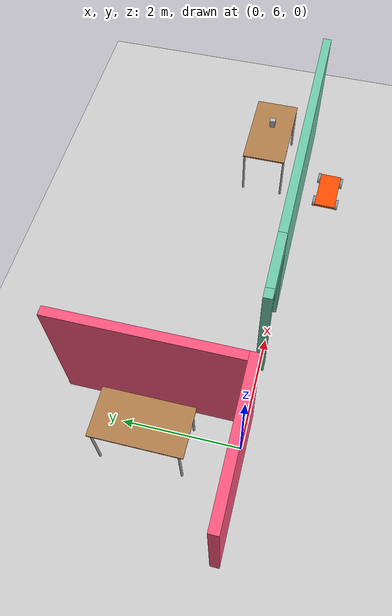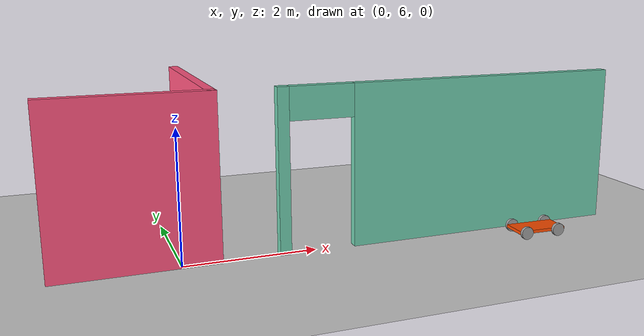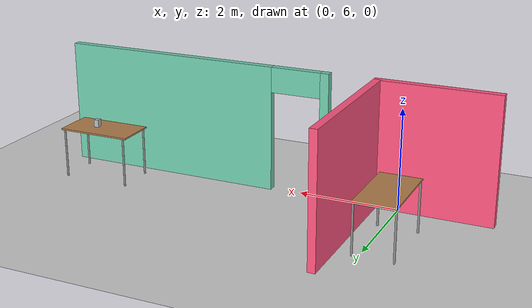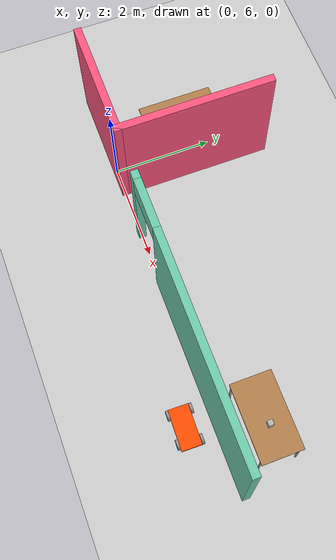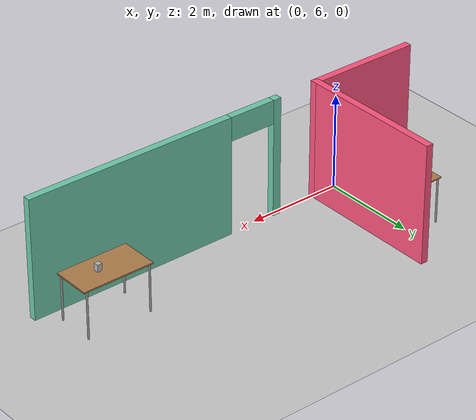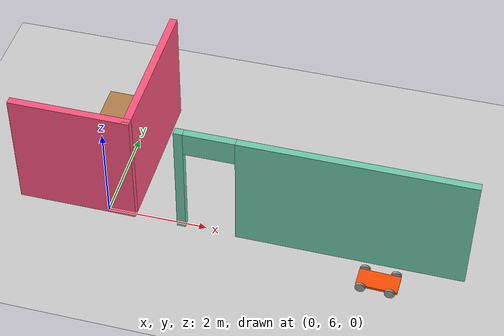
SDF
<sdf version="1.6">
 <world name="default">
  <model name="ground_plane">
   <static>1</static>
   <link name="link">
    <collision name="collision">
     <geometry><plane><normal>0 0 1</normal><size>100 100</size></plane></geometry>
     <surface><friction><ode><mu>100</mu><mu2>50</mu2></ode></friction></surface>
    </collision>
    <visual name="visual">
     <cast_shadows>0</cast_shadows>
     <geometry><plane><normal>0 0 1</normal><size>100 100</size></plane></geometry>
     <material>
      <script><uri>file://media/materials/scripts/gazebo.material</uri><name>Gazebo/Grey</name></script>
     </material>
    </visual>
   </link>
  </model>
  <model name="myWorld">
   <pose>-1.5 0 0 0 -0 0</pose>
   <link name="Wall_144">
    <collision name="Wall_144_Collision">
     <geometry><box><size>3.15 0.15 2.5</size></box></geometry>
     <pose>0 0 1.25 0 -0 0</pose>
    </collision>
    <visual name="Wall_144_Visual">
     <pose>0 0 1.25 0 -0 0</pose>
     <geometry><box><size>3.15 0.15 2.5</size></box></geometry>
     <material>
      <script><uri>file://media/materials/scripts/gazebo.material</uri><name>Gazebo/Grey</name></script>
      <ambient>1 0.333333 0.498039 1</ambient>
     </material>
     <meta><layer>0</layer></meta>
    </visual>
    <pose>2 7.5 0 0 0 -1.5708</pose>
   </link>
   <link name="Wall_145">
    <collision name="Wall_145_Collision">
     <geometry><box><size>2.4 0.15 2.5</size></box></geometry>
     <pose>0 0 1.25 0 -0 0</pose>
    </collision>
    <visual name="Wall_145_Visual">
     <pose>0 0 1.25 0 -0 0</pose>
     <geometry><box><size>2.4 0.15 2.5</size></box></geometry>
     <material>
      <script><uri>file://media/materials/scripts/gazebo.material</uri><name>Gazebo/Grey</name></script>
      <ambient>1 0.333333 0.498039 1</ambient>
     </material>
     <meta><layer>0</layer></meta>
    </visual>
    <pose>0.875 6 0 0 -0 3.14159</pose>
   </link>
   <link name="Wall_184">
    <pose>5.75 6 0 0 -0 3.14159</pose>
    <visual name="Wall_184_Visual_0">
     <pose>-0.5875 0 1.25 0 -0 0</pose>
     <geometry><box><size>4.475 0.15 2.5</size></box></geometry>
     <material>
      <script><uri>file://media/materials/scripts/gazebo.material</uri><name>Gazebo/Grey</name></script>
      <ambient>0.435294 0.796078 0.67451 1</ambient>
     </material>
     <meta><layer>0</layer></meta>
    </visual>
    <collision name="Wall_184_Collision_0">
     <geometry><box><size>4.475 0.15 2.5</size></box></geometry>
     <pose>-0.5875 0 1.25 0 -0 0</pose>
    </collision>
    <visual name="Wall_184_Visual_1">
     <pose>2.7375 0 1.25 0 -0 0</pose>
     <geometry><box><size>0.175 0.15 2.5</size></box></geometry>
     <material>
      <script><uri>file://media/materials/scripts/gazebo.material</uri><name>Gazebo/Grey</name></script>
      <ambient>0.435294 0.796078 0.67451 1</ambient>
     </material>
     <meta><layer>0</layer></meta>
    </visual>
    <collision name="Wall_184_Collision_1">
     <geometry><box><size>0.175 0.15 2.5</size></box></geometry>
     <pose>2.7375 0 1.25 0 -0 0</pose>
    </collision>
    <visual name="Wall_184_Visual_2">
     <pose>2.15 0 2.25 0 -0 0</pose>
     <geometry><box><size>1 0.15 0.5</size></box></geometry>
     <material>
      <script><uri>file://media/materials/scripts/gazebo.material</uri><name>Gazebo/Grey</name></script>
      <ambient>0.435294 0.796078 0.67451 1</ambient>
     </material>
     <meta><layer>0</layer></meta>
    </visual>
    <collision name="Wall_184_Collision_2">
     <geometry><box><size>1 0.15 0.5</size></box></geometry>
     <pose>2.15 0 2.25 0 -0 0</pose>
    </collision>
   </link>
   <static>1</static>
  </model>
  <model name="table">
   <static>1</static>
   <link name="link">
    <collision name="surface">
     <pose>0 0 1 0 -0 0</pose>
     <geometry><box><size>1.5 0.8 0.03</size></box></geometry>
     <surface><friction><ode><mu>0.6</mu><mu2>0.6</mu2></ode></friction></surface>
    </collision>
    <visual name="visual1">
     <pose>0 0 1 0 -0 0</pose>
     <geometry><box><size>1.5 0.8 0.03</size></box></geometry>
     <material>
      <script><uri>file://media/materials/scripts/gazebo.material</uri><name>Gazebo/Wood</name></script>
     </material>
    </visual>
    <collision name="front_left_leg">
     <pose>0.68 0.38 0.5 0 -0 0</pose>
     <geometry><cylinder><radius>0.02</radius><length>1</length></cylinder></geometry>
    </collision>
    <visual name="front_left_leg">
     <pose>0.68 0.38 0.5 0 -0 0</pose>
     <geometry><cylinder><radius>0.02</radius><length>1</length></cylinder></geometry>
     <material>
      <script><uri>file://media/materials/scripts/gazebo.material</uri><name>Gazebo/Grey</name></script>
     </material>
    </visual>
    <collision name="front_right_leg">
     <pose>0.68 -0.38 0.5 0 -0 0</pose>
     <geometry><cylinder><radius>0.02</radius><length>1</length></cylinder></geometry>
    </collision>
    <visual name="front_right_leg">
     <pose>0.68 -0.38 0.5 0 -0 0</pose>
     <geometry><cylinder><radius>0.02</radius><length>1</length></cylinder></geometry>
     <material>
      <script><uri>file://media/materials/scripts/gazebo.material</uri><name>Gazebo/Grey</name></script>
     </material>
    </visual>
    <collision name="back_right_leg">
     <pose>-0.68 -0.38 0.5 0 -0 0</pose>
     <geometry><cylinder><radius>0.02</radius><length>1</length></cylinder></geometry>
    </collision>
    <visual name="back_right_leg">
     <pose>-0.68 -0.38 0.5 0 -0 0</pose>
     <geometry><cylinder><radius>0.02</radius><length>1</length></cylinder></geometry>
     <material>
      <script><uri>file://media/materials/scripts/gazebo.material</uri><name>Gazebo/Grey</name></script>
     </material>
    </visual>
    <collision name="back_left_leg">
     <pose>-0.68 0.38 0.5 0 -0 0</pose>
     <geometry><cylinder><radius>0.02</radius><length>1</length></cylinder></geometry>
    </collision>
    <visual name="back_left_leg">
     <pose>-0.68 0.38 0.5 0 -0 0</pose>
     <geometry><cylinder><radius>0.02</radius><length>1</length></cylinder></geometry>
     <material>
      <script><uri>file://media/materials/scripts/gazebo.material</uri><name>Gazebo/Grey</name></script>
     </material>
    </visual>
   </link>
   <pose>6 6.75 0 0 -0 0</pose>
  </model>
  <model name="tea_box">
   <link name="link">
    <pose>0 0 0.075 0 -0 0</pose>
    <visual name="visual">
     <geometry><box><size>0.1 0.1 0.15</size></box></geometry>
     <material>
      <script>
       <uri>file://model/3DGEMS/food/tea_box/materials/scripts</uri>
       <uri>file://model/3DGEMS/food/tea_box/materials/textures</uri>
       <name>tea_pat</name>
      </script>
     </material>
    </visual>
    <collision name="collision"><geometry><box><size>0.1 0.1 0.15</size></box></geometry></collision>
   </link>
   <static>1</static>
   <pose>6.15 6.75 1.02 0 -0 0</pose>
  </model>
  <model name="table_0_clone_1">
   <static>1</static>
   <link name="link">
    <collision name="surface">
     <pose>0 0 1 0 -0 0</pose>
     <geometry><box><size>1.5 0.8 0.03</size></box></geometry>
     <surface><friction><ode><mu>0.6</mu><mu2>0.6</mu2></ode></friction></surface>
    </collision>
    <visual name="visual1">
     <pose>0 0 1 0 -0 0</pose>
     <geometry><box><size>1.5 0.8 0.03</size></box></geometry>
     <material>
      <script><uri>file://media/materials/scripts/gazebo.material</uri><name>Gazebo/Wood</name></script>
     </material>
    </visual>
    <collision name="front_left_leg">
     <pose>0.68 0.38 0.5 0 -0 0</pose>
     <geometry><cylinder><radius>0.02</radius><length>1</length></cylinder></geometry>
    </collision>
    <visual name="front_left_leg">
     <pose>0.68 0.38 0.5 0 -0 0</pose>
     <geometry><cylinder><radius>0.02</radius><length>1</length></cylinder></geometry>
     <material>
      <script><uri>file://media/materials/scripts/gazebo.material</uri><name>Gazebo/Grey</name></script>
     </material>
    </visual>
    <collision name="front_right_leg">
     <pose>0.68 -0.38 0.5 0 -0 0</pose>
     <geometry><cylinder><radius>0.02</radius><length>1</length></cylinder></geometry>
    </collision>
    <visual name="front_right_leg">
     <pose>0.68 -0.38 0.5 0 -0 0</pose>
     <geometry><cylinder><radius>0.02</radius><length>1</length></cylinder></geometry>
     <material>
      <script><uri>file://media/materials/scripts/gazebo.material</uri><name>Gazebo/Grey</name></script>
     </material>
    </visual>
    <collision name="back_right_leg">
     <pose>-0.68 -0.38 0.5 0 -0 0</pose>
     <geometry><cylinder><radius>0.02</radius><length>1</length></cylinder></geometry>
    </collision>
    <visual name="back_right_leg">
     <pose>-0.68 -0.38 0.5 0 -0 0</pose>
     <geometry><cylinder><radius>0.02</radius><length>1</length></cylinder></geometry>
     <material>
      <script><uri>file://media/materials/scripts/gazebo.material</uri><name>Gazebo/Grey</name></script>
     </material>
    </visual>
    <collision name="back_left_leg">
     <pose>-0.68 0.38 0.5 0 -0 0</pose>
     <geometry><cylinder><radius>0.02</radius><length>1</length></cylinder></geometry>
    </collision>
    <visual name="back_left_leg">
     <pose>-0.68 0.38 0.5 0 -0 0</pose>
     <geometry><cylinder><radius>0.02</radius><length>1</length></cylinder></geometry>
     <material>
      <script><uri>file://media/materials/scripts/gazebo.material</uri><name>Gazebo/Grey</name></script>
     </material>
    </visual>
   </link>
   <pose>-0.25 7.5 0 0 -0 1.5708</pose>
  </model>
  <model name="myRobot_3">
   <link name="link_0">
    <pose>0.008 1e-06 0 0 -0 0</pose>
    <inertial>
     <mass>1</mass>
     <inertia>
      <ixx>0.166667</ixx>
      <ixy>0</ixy>
      <ixz>0</ixz>
      <iyy>0.166667</iyy>
      <iyz>0</iyz>
      <izz>0.166667</izz>
     </inertia>
    </inertial>
    <visual name="visual">
     <geometry><box><size>0.8 0.4 0.05</size></box></geometry>
     <material>
      <lighting>1</lighting>
      <script><uri>file://media/materials/scripts/gazebo.material</uri><name>Gazebo/Grey</name></script>
      <shader type="pixel"><normal_map>__default__</normal_map></shader>
      <ambient>1 0.3 0 1</ambient>
      <diffuse>0.7 0.7 0.7 1</diffuse>
      <specular>0.01 0.01 0.01 1</specular>
      <emissive>0 0 0 1</emissive>
     </material>
    </visual>
    <collision name="collision">
     <geometry><box><size>0.8 0.4 0.05</size></box></geometry>
     <surface>
      <friction>
       <ode><mu>1</mu><mu2>1</mu2><fdir1>0 0 0</fdir1><slip1>0</slip1><slip2>0</slip2></ode>
       <torsional>
        <coefficient>1</coefficient>
        <patch_radius>0</patch_radius>
        <surface_radius>0</surface_radius>
        <use_patch_radius>1</use_patch_radius>
        <ode><slip>0</slip></ode>
       </torsional>
      </friction>
      <bounce><restitution_coefficient>0</restitution_coefficient><threshold>1e+06</threshold></bounce>
      <contact>
       <collide_without_contact>0</collide_without_contact>
       <collide_without_contact_bitmask>1</collide_without_contact_bitmask>
       <collide_bitmask>1</collide_bitmask>
       <ode>
        <soft_cfm>0</soft_cfm>
        <soft_erp>0.2</soft_erp>
        <kp>1e+13</kp>
        <kd>1</kd>
        <max_vel>0.01</max_vel>
        <min_depth>0</min_depth>
       </ode>
       <bullet>
        <split_impulse>1</split_impulse>
        <split_impulse_penetration_threshold>-0.01</split_impulse_penetration_threshold>
        <soft_cfm>0</soft_cfm>
        <soft_erp>0.2</soft_erp>
        <kp>1e+13</kp>
        <kd>1</kd>
       </bullet>
      </contact>
     </surface>
    </collision>
   </link>
   <link name="link_1">
    <pose>0.268 -0.225013 0 1.5707 -0 0</pose>
    <inertial>
     <mass>1</mass>
     <inertia><ixx>0.145833</ixx><ixy>0</ixy><ixz>0</ixz><iyy>0.145833</iyy><iyz>0</iyz><izz>0.125</izz></inertia>
    </inertial>
    <visual name="visual">
     <geometry><cylinder><radius>0.1</radius><length>0.05</length></cylinder></geometry>
     <material>
      <lighting>1</lighting>
      <script><uri>file://media/materials/scripts/gazebo.material</uri><name>Gazebo/Grey</name></script>
      <shader type="pixel"><normal_map>__default__</normal_map></shader>
      <ambient>1 1 1 1</ambient>
      <diffuse>0.7 0.7 0.7 1</diffuse>
      <specular>0.01 0.01 0.01 1</specular>
      <emissive>0 0 0 1</emissive>
     </material>
    </visual>
    <collision name="collision">
     <geometry><cylinder><radius>0.1</radius><length>0.05</length></cylinder></geometry>
     <surface>
      <friction>
       <ode><mu>1</mu><mu2>1</mu2><fdir1>0 0 0</fdir1><slip1>0</slip1><slip2>0</slip2></ode>
       <torsional>
        <coefficient>1</coefficient>
        <patch_radius>0</patch_radius>
        <surface_radius>0</surface_radius>
        <use_patch_radius>1</use_patch_radius>
        <ode><slip>0</slip></ode>
       </torsional>
      </friction>
      <bounce><restitution_coefficient>0</restitution_coefficient><threshold>1e+06</threshold></bounce>
      <contact>
       <collide_without_contact>0</collide_without_contact>
       <collide_without_contact_bitmask>1</collide_without_contact_bitmask>
       <collide_bitmask>1</collide_bitmask>
       <ode>
        <soft_cfm>0</soft_cfm>
        <soft_erp>0.2</soft_erp>
        <kp>1e+13</kp>
        <kd>1</kd>
        <max_vel>0.01</max_vel>
        <min_depth>0</min_depth>
       </ode>
       <bullet>
        <split_impulse>1</split_impulse>
        <split_impulse_penetration_threshold>-0.01</split_impulse_penetration_threshold>
        <soft_cfm>0</soft_cfm>
        <soft_erp>0.2</soft_erp>
        <kp>1e+13</kp>
        <kd>1</kd>
       </bullet>
      </contact>
     </surface>
    </collision>
   </link>
   <link name="link_1_clone">
    <pose>-0.292 -0.225009 0 1.5707 -0 0</pose>
    <inertial>
     <mass>1</mass>
     <inertia><ixx>0.145833</ixx><ixy>0</ixy><ixz>0</ixz><iyy>0.145833</iyy><iyz>0</iyz><izz>0.125</izz></inertia>
    </inertial>
    <visual name="visual">
     <geometry><cylinder><radius>0.1</radius><length>0.05</length></cylinder></geometry>
     <material>
      <lighting>1</lighting>
      <script><uri>file://media/materials/scripts/gazebo.material</uri><name>Gazebo/Grey</name></script>
      <shader type="pixel"><normal_map>__default__</normal_map></shader>
      <ambient>1 1 1 1</ambient>
      <diffuse>0.7 0.7 0.7 1</diffuse>
      <specular>0.01 0.01 0.01 1</specular>
      <emissive>0 0 0 1</emissive>
     </material>
    </visual>
    <collision name="collision">
     <geometry><cylinder><radius>0.1</radius><length>0.05</length></cylinder></geometry>
     <surface>
      <friction>
       <ode><mu>1</mu><mu2>1</mu2><fdir1>0 0 0</fdir1><slip1>0</slip1><slip2>0</slip2></ode>
       <torsional>
        <coefficient>1</coefficient>
        <patch_radius>0</patch_radius>
        <surface_radius>0</surface_radius>
        <use_patch_radius>1</use_patch_radius>
        <ode><slip>0</slip></ode>
       </torsional>
      </friction>
      <bounce><restitution_coefficient>0</restitution_coefficient><threshold>1e+06</threshold></bounce>
      <contact>
       <collide_without_contact>0</collide_without_contact>
       <collide_without_contact_bitmask>1</collide_without_contact_bitmask>
       <collide_bitmask>1</collide_bitmask>
       <ode>
        <soft_cfm>0</soft_cfm>
        <soft_erp>0.2</soft_erp>
        <kp>1e+13</kp>
        <kd>1</kd>
        <max_vel>0.01</max_vel>
        <min_depth>0</min_depth>
       </ode>
       <bullet>
        <split_impulse>1</split_impulse>
        <split_impulse_penetration_threshold>-0.01</split_impulse_penetration_threshold>
        <soft_cfm>0</soft_cfm>
        <soft_erp>0.2</soft_erp>
        <kp>1e+13</kp>
        <kd>1</kd>
       </bullet>
      </contact>
     </surface>
    </collision>
   </link>
   <link name="link_1_clone_0">
    <pose>0.308 0.22501 0 1.5707 -0 0</pose>
    <inertial>
     <mass>1</mass>
     <inertia><ixx>0.145833</ixx><ixy>0</ixy><ixz>0</ixz><iyy>0.145833</iyy><iyz>0</iyz><izz>0.125</izz></inertia>
    </inertial>
    <visual name="visual">
     <geometry><cylinder><radius>0.1</radius><length>0.05</length></cylinder></geometry>
     <material>
      <lighting>1</lighting>
      <script><uri>file://media/materials/scripts/gazebo.material</uri><name>Gazebo/Grey</name></script>
      <shader type="pixel"><normal_map>__default__</normal_map></shader>
      <ambient>1 1 1 1</ambient>
      <diffuse>0.7 0.7 0.7 1</diffuse>
      <specular>0.01 0.01 0.01 1</specular>
      <emissive>0 0 0 1</emissive>
     </material>
    </visual>
    <collision name="collision">
     <geometry><cylinder><radius>0.1</radius><length>0.05</length></cylinder></geometry>
     <surface>
      <friction>
       <ode><mu>1</mu><mu2>1</mu2><fdir1>0 0 0</fdir1><slip1>0</slip1><slip2>0</slip2></ode>
       <torsional>
        <coefficient>1</coefficient>
        <patch_radius>0</patch_radius>
        <surface_radius>0</surface_radius>
        <use_patch_radius>1</use_patch_radius>
        <ode><slip>0</slip></ode>
       </torsional>
      </friction>
      <bounce><restitution_coefficient>0</restitution_coefficient><threshold>1e+06</threshold></bounce>
      <contact>
       <collide_without_contact>0</collide_without_contact>
       <collide_without_contact_bitmask>1</collide_without_contact_bitmask>
       <collide_bitmask>1</collide_bitmask>
       <ode>
        <soft_cfm>0</soft_cfm>
        <soft_erp>0.2</soft_erp>
        <kp>1e+13</kp>
        <kd>1</kd>
        <max_vel>0.01</max_vel>
        <min_depth>0</min_depth>
       </ode>
       <bullet>
        <split_impulse>1</split_impulse>
        <split_impulse_penetration_threshold>-0.01</split_impulse_penetration_threshold>
        <soft_cfm>0</soft_cfm>
        <soft_erp>0.2</soft_erp>
        <kp>1e+13</kp>
        <kd>1</kd>
       </bullet>
      </contact>
     </surface>
    </collision>
   </link>
   <link name="link_1_clone_1">
    <pose>-0.292 0.22501 0 1.5707 -0 0</pose>
    <inertial>
     <mass>1</mass>
     <inertia><ixx>0.145833</ixx><ixy>0</ixy><ixz>0</ixz><iyy>0.145833</iyy><iyz>0</iyz><izz>0.125</izz></inertia>
    </inertial>
    <visual name="visual">
     <geometry><cylinder><radius>0.1</radius><length>0.05</length></cylinder></geometry>
     <material>
      <lighting>1</lighting>
      <script><uri>file://media/materials/scripts/gazebo.material</uri><name>Gazebo/Grey</name></script>
      <shader type="pixel"><normal_map>__default__</normal_map></shader>
      <ambient>1 1 1 1</ambient>
      <diffuse>0.7 0.7 0.7 1</diffuse>
      <specular>0.01 0.01 0.01 1</specular>
      <emissive>0 0 0 1</emissive>
     </material>
    </visual>
    <collision name="collision">
     <geometry><cylinder><radius>0.1</radius><length>0.05</length></cylinder></geometry>
     <surface>
      <friction>
       <ode><mu>1</mu><mu2>1</mu2><fdir1>0 0 0</fdir1><slip1>0</slip1><slip2>0</slip2></ode>
       <torsional>
        <coefficient>1</coefficient>
        <patch_radius>0</patch_radius>
        <surface_radius>0</surface_radius>
        <use_patch_radius>1</use_patch_radius>
        <ode><slip>0</slip></ode>
       </torsional>
      </friction>
      <bounce><restitution_coefficient>0</restitution_coefficient><threshold>1e+06</threshold></bounce>
      <contact>
       <collide_without_contact>0</collide_without_contact>
       <collide_without_contact_bitmask>1</collide_without_contact_bitmask>
       <collide_bitmask>1</collide_bitmask>
       <ode>
        <soft_cfm>0</soft_cfm>
        <soft_erp>0.2</soft_erp>
        <kp>1e+13</kp>
        <kd>1</kd>
        <max_vel>0.01</max_vel>
        <min_depth>0</min_depth>
       </ode>
       <bullet>
        <split_impulse>1</split_impulse>
        <split_impulse_penetration_threshold>-0.01</split_impulse_penetration_threshold>
        <soft_cfm>0</soft_cfm>
        <soft_erp>0.2</soft_erp>
        <kp>1e+13</kp>
        <kd>1</kd>
       </bullet>
      </contact>
     </surface>
    </collision>
   </link>
   <joint name="link_0_JOINT_1" type="revolute">
    <parent>link_0</parent>
    <child>link_1</child>
    <axis>
     <xyz>0 0 1</xyz>
     <use_parent_model_frame>0</use_parent_model_frame>
     <limit>
      <lower>-1.79769e+308</lower>
      <upper>1.79769e+308</upper>
      <effort>-1</effort>
      <velocity>-1</velocity>
     </limit>
     <dynamics>
      <spring_reference>0</spring_reference>
      <spring_stiffness>0</spring_stiffness>
      <damping>0</damping>
     </dynamics>
    </axis>
    <physics>
     <ode><limit><cfm>0</cfm><erp>0.2</erp></limit><suspension><cfm>0</cfm><erp>0.2</erp></suspension></ode>
    </physics>
   </joint>
   <joint name="link_0_JOINT_2" type="revolute">
    <parent>link_0</parent>
    <child>link_1_clone</child>
    <axis>
     <xyz>0 0 1</xyz>
     <use_parent_model_frame>0</use_parent_model_frame>
     <limit>
      <lower>-1.79769e+308</lower>
      <upper>1.79769e+308</upper>
      <effort>-1</effort>
      <velocity>-1</velocity>
     </limit>
     <dynamics>
      <spring_reference>0</spring_reference>
      <spring_stiffness>0</spring_stiffness>
      <damping>0</damping>
     </dynamics>
    </axis>
    <physics>
     <ode><limit><cfm>0</cfm><erp>0.2</erp></limit><suspension><cfm>0</cfm><erp>0.2</erp></suspension></ode>
    </physics>
   </joint>
   <joint name="link_0_JOINT_3" type="revolute">
    <parent>link_0</parent>
    <child>link_1_clone_0</child>
    <axis>
     <xyz>0 0 1</xyz>
     <use_parent_model_frame>0</use_parent_model_frame>
     <limit>
      <lower>-1.79769e+308</lower>
      <upper>1.79769e+308</upper>
      <effort>-1</effort>
      <velocity>-1</velocity>
     </limit>
     <dynamics>
      <spring_reference>0</spring_reference>
      <spring_stiffness>0</spring_stiffness>
      <damping>0</damping>
     </dynamics>
    </axis>
    <physics>
     <ode><limit><cfm>0</cfm><erp>0.2</erp></limit><suspension><cfm>0</cfm><erp>0.2</erp></suspension></ode>
    </physics>
   </joint>
   <joint name="link_0_JOINT_4" type="revolute">
    <parent>link_0</parent>
    <child>link_1_clone_1</child>
    <axis>
     <xyz>0 0 1</xyz>
     <use_parent_model_frame>0</use_parent_model_frame>
     <limit>
      <lower>-1.79769e+308</lower>
      <upper>1.79769e+308</upper>
      <effort>-1</effort>
      <velocity>-1</velocity>
     </limit>
     <dynamics>
      <spring_reference>0</spring_reference>
      <spring_stiffness>0</spring_stiffness>
      <damping>0</damping>
     </dynamics>
    </axis>
    <physics>
     <ode><limit><cfm>0</cfm><erp>0.2</erp></limit><suspension><cfm>0</cfm><erp>0.2</erp></suspension></ode>
    </physics>
   </joint>
   <static>0</static>
   <pose>5.50215 5.42646 0.109999 -4e-06 8e-06 -0.024529</pose>
  </model>
 </world>
</sdf>
